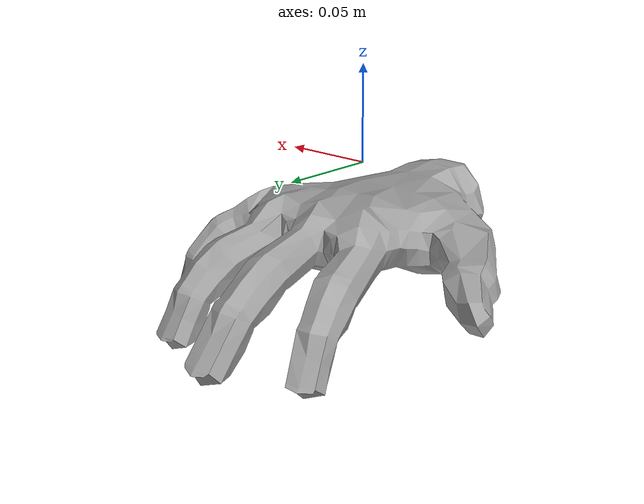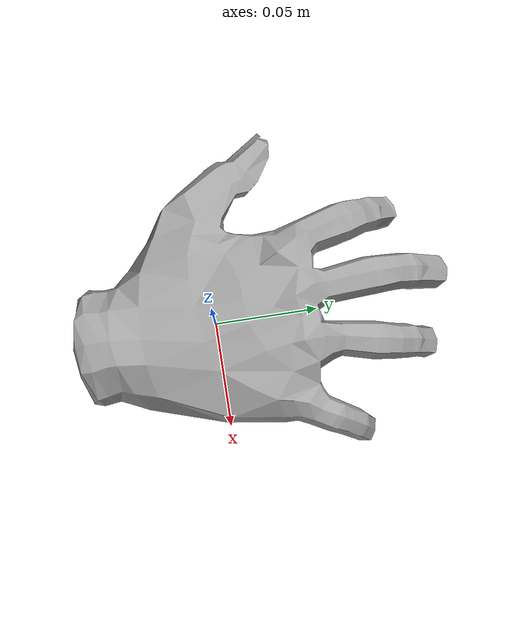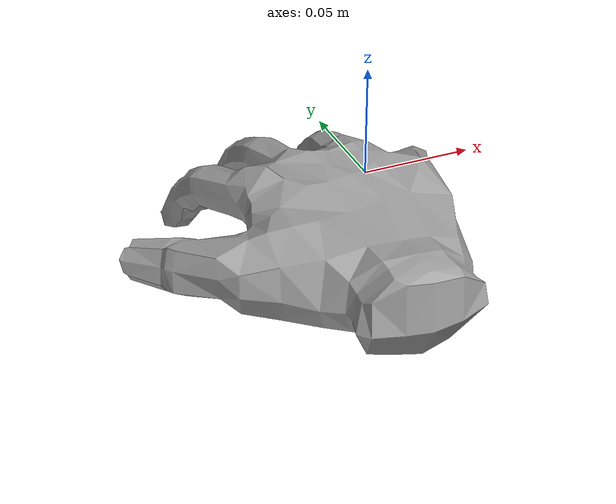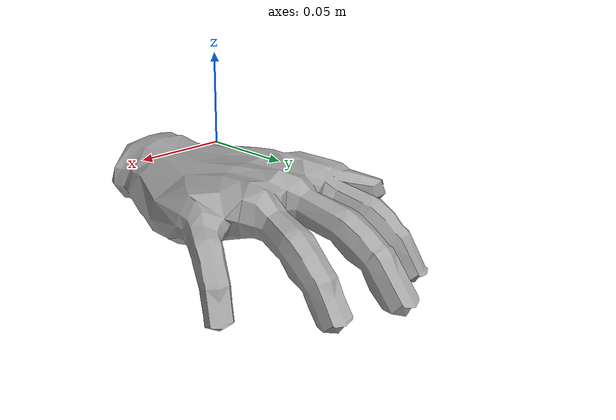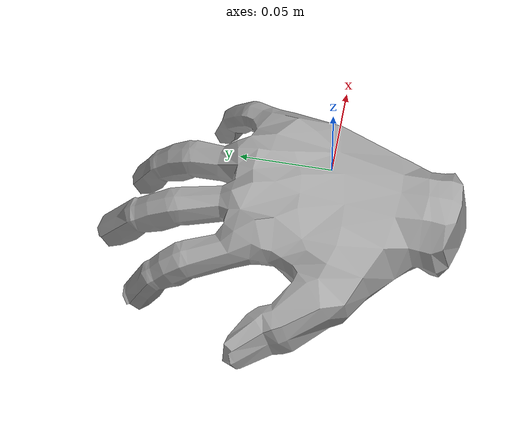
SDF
<?xml version='1.0'?>
<sdf version="1.3">

  <model name="Hand_Right">
    <pose> 0.0 0.0 0.0  0.0 0.0 0.0 </pose>
    <static>false</static>

    <link name="body">
      <inertial>
        <mass>0.10</mass>
        <inertia>
          <ixx>1.000</ixx>
          <ixy>0.000</ixy>
          <ixz>0.000</ixz>
          <iyy>1.000</iyy>
          <iyz>0.000</iyz>
          <izz>1.000</izz>
        </inertia>
      </inertial>

      <visual name="visual">
        <geometry>
          <mesh><uri>model://Hand/meshes/hand.dae</uri><scale>1.0 1.0 1.0</scale></mesh>
        </geometry>
        <material>
          <emissive> 1 1 1 1 </emissive>
        </material>
      </visual>

      <collision name="collision">
        <geometry>
          <mesh><uri>model://Nut/meshes/nut.dae</uri><scale>1.0 1.0 1.0</scale></mesh>
        </geometry>
	<surface>
          <bounce>
            <restitution_coefficient> 0 </restitution_coefficient>
            <threshold> 0 </threshold>
          </bounce>
          <contact>
            <ode>
              <max_vel>0</max_vel>
            </ode>
          </contact>
        </surface>
      </collision>

    </link>
  </model>
</sdf>
